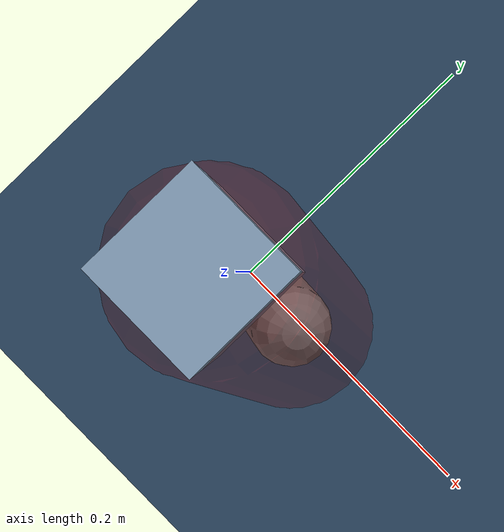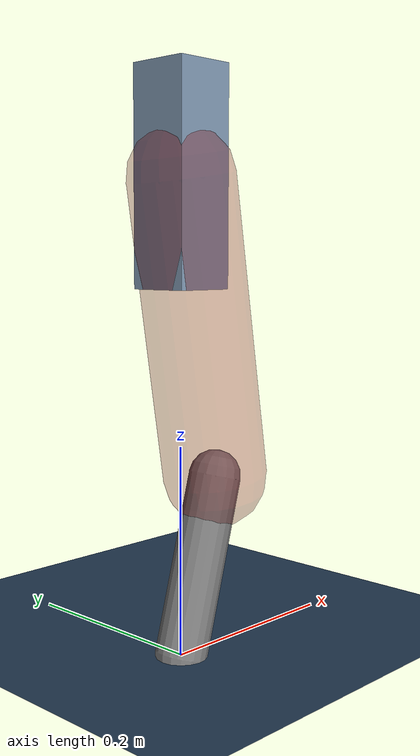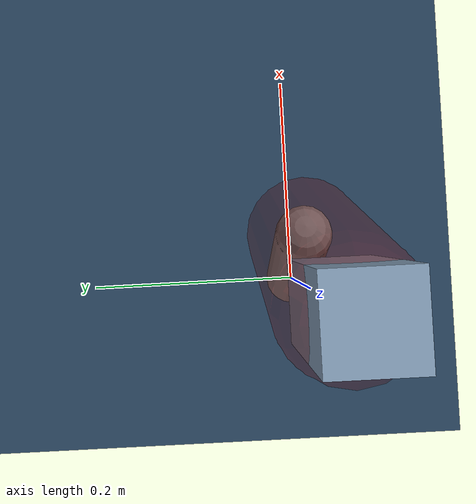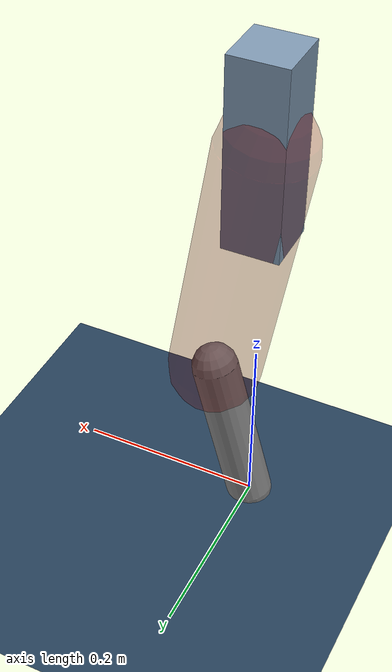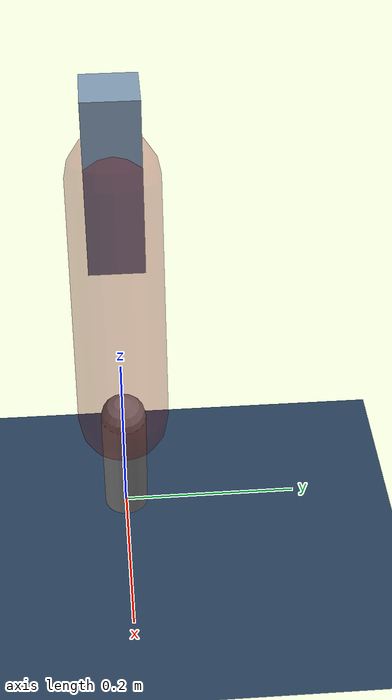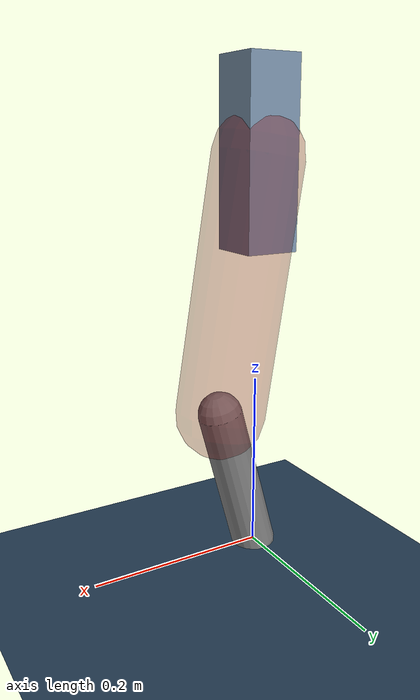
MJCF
<mujoco model="Hopper2D">
	<compiler inertiafromgeom="true" angle="radian" />
	<option timestep="0.001" integrator="implicit" cone="elliptic" solver="Newton" tolerance="1e-10" />

	<default>
		<geom contype="1" conaffinity="1" condim="3" friction="2 0.005 0.0001" solref="0.005 1" />
		<joint limited="true" damping="0.1" />
	</default>

	<asset>
		<texture name="skybox" type="skybox" builtin="gradient" rgb1=".4 .6 .8" rgb2="0 0 0" width="800" height="800" />
		<texture name="grid" type="2d" builtin="checker" rgb1=".1 .2 .3" rgb2=".2 .3 .4" width="300" height="300" mark="edge" markrgb=".2 .3 .4" />
		<material name="ground" texture="grid" texrepeat="1 1" texuniform="true" reflectance="0.1" />
		<material name="leg" rgba="0.5 0.6 0.7 1" />
	</asset>

	<worldbody>

		<geom name="floor" type="plane" size="5 5 0.25" material="ground" />

		<light directional="false" diffuse="0.8 0.8 0.8" specular="0.3 0.3 0.3" pos="0 0 2" dir="0 0 -1" />
		<light mode="targetbodycom" target="base" directional="false" diffuse="0.8 0.8 0.8" specular="0.3 0.3 0.3" pos="0 0 2" dir="0 0 -1" />

		<camera name="fixed" pos="0 -2 1" xyaxes="1 0 0 0 0 1" />
		<camera name="tracking" mode="trackcom" pos="0 -3 1" />

		<body name="root" pos="0 0 0.44588092738771334">
			<joint name="slide_x" type="slide" axis="1 0 0" range="-100 100" />
			<joint name="slide_z" type="slide" axis="0 0 1" range="0 10" />

			<body name="base" pos="0 0 0">
				<geom name="torso" type="box" size="0.03 0.03 0.1" mass="2.0620000000000003" material="leg" />

				<body name="link1" pos="0 0 0" euler="0 1.4073928930157908 0">
					<joint type="hinge" axis="0 -1 0" pos="0 0 0" name="hinge1" limited="true" range="-3.14 3.14" stiffness="0" damping="0.1" />
					<geom name="thigh" type="capsule" fromto="0 0 0 0.2828714383402982 0 0" size="0.05" rgba="0.5 0 0 0.3" mass="0.9427528835188053" />

					<body name="link2" pos="0.2828714383402982 0 0" euler="0 0.4326219210960464 0">
						<joint type="hinge" axis="0 -1 0" pos="0 0 0" name="hinge2" limited="true" range="-3.14 3.14" stiffness="0" damping="0.1" />
						<geom name="shank" type="capsule" fromto="0 0 0 0.17300948904741514 0 0" size="0.025" mass="0.37790759123793216" />

					</body>
				</body>
			</body>
		</body>
	</worldbody>

	<actuator>
		<motor name="torque1" joint="hinge1" ctrlrange="-54.389933277972304 54.389933277972304" ctrllimited="true" gear="1" />
		<motor name="torque2" joint="hinge2" ctrlrange="-57.12230780464357 57.12230780464357" ctrllimited="true" gear="1" />
	</actuator>
</mujoco>
